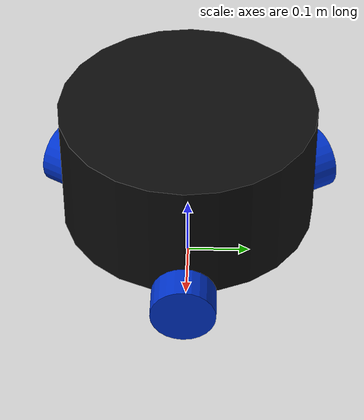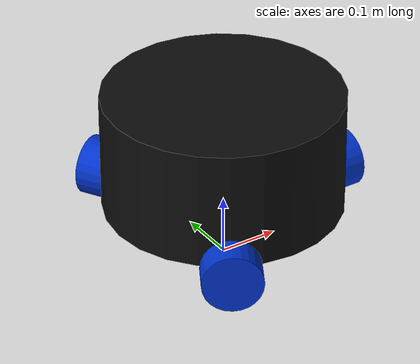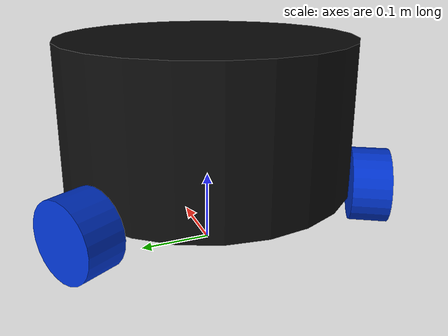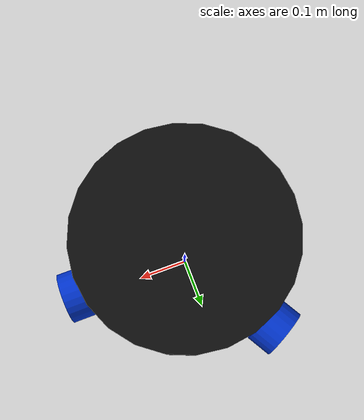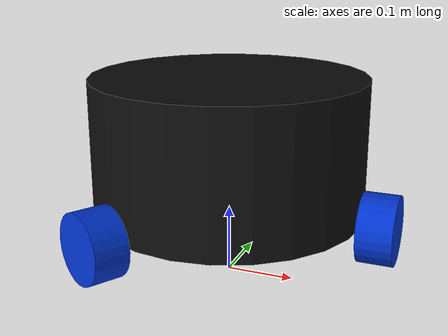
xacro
<?xml version="1.0"?>
<robot name="omnibot" xmlns:xacro="http://ros.org/wiki/xacro">
  <xacro:include filename="$(find omnibot_description)/urdf/common_properties.xacro"/>
  <xacro:include filename="$(find omnibot_description)/urdf/mech/omnibot_base.xacro"/>
  <xacro:include filename="$(find omnibot_description)/urdf/mech/omnibot_wheel.xacro"/>
  <xacro:include filename="$(find omnibot_description)/urdf/omnibot_sensors.xacro"/>
  <xacro:include filename="$(find omnibot_description)/urdf/omnibot_ros2_control.xacro"/>
  <xacro:include filename="$(find omnibot_description)/urdf/omnibot_gazebo.xacro"/>
</robot>

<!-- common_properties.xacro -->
<robot xmlns:xacro="http://ros.org/wiki/xacro">
  <material name="blue"><color rgba="0 0.2 0.8 1"/></material>
  <material name="black"><color rgba="0.05 0.05 0.05 1"/></material>
  <material name="grey"><color rgba="0.5 0.5 0.5 1"/></material>

  <xacro:macro name="cylinder_inertia" params="m r l o_xyz o_rpy">
    <inertial>
      <mass value="${m}"/>
      <origin xyz="${o_xyz}" rpy="${o_rpy}"/>
      <inertia ixx="${(m/12) * (3*r*r + l*l)}" ixy="0" ixz="0"
               iyy="${(m/12) * (3*r*r + l*l)}" iyz="0"
               izz="${(m/2) * r*r}"/>
    </inertial>
  </xacro:macro>
</robot>

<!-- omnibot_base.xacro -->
<robot xmlns:xacro="http://ros.org/wiki/xacro">
  <xacro:property name="base_radius" value="0.20"/>
  <xacro:property name="base_height" value="0.20"/>
  <xacro:property name="wheel_radius" value="0.05"/>
  <xacro:property name="wheel_length" value="0.05"/>

  <link name="base_footprint"/>
  <link name="base_link">
    <visual>
      <origin xyz="0 0 ${base_height / 2.0}" rpy="0 0 0"/>
      <geometry><cylinder radius="${base_radius}" length="${base_height}"/></geometry>
      <material name="black"/>
    </visual>
    <collision>
      <origin xyz="0 0 ${base_height / 2.0}" rpy="0 0 0"/>
      <geometry><cylinder radius="${base_radius}" length="${base_height}"/></geometry>
    </collision>
    <xacro:cylinder_inertia m="10.0" r="${base_radius}" l="${base_height}"
                            o_xyz="0 0 ${base_height / 2.0}" o_rpy="0 0 0"/>
  </link>

  <joint name="base_joint" type="fixed">
    <parent link="base_footprint"/>
    <child link="base_link"/>
    <origin xyz="0 0 ${base_height / 2.0}" rpy="0 0 0"/>
  </joint>
</robot>

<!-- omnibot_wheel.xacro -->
<robot xmlns:xacro="http://ros.org/wiki/xacro">
  <xacro:macro name="wheel_link" params="num">
    <link name="wheel_link_${num}">
      <visual>
        <geometry><cylinder radius="${wheel_radius}" length="${wheel_length}"/></geometry>
        <origin xyz="0 0 0" rpy="${pi / 2.0} 0 0"/>
        <material name="blue"/>
      </visual>
      <!-- A spherical contact surface approximates free-spinning omni rollers. -->
      <collision><geometry><sphere radius="${wheel_radius}"/></geometry></collision>
      <xacro:cylinder_inertia m="0.5" r="${wheel_radius}" l="${wheel_length}"
                              o_xyz="0 0 0" o_rpy="${pi / 2.0} 0 0"/>
    </link>
    <joint name="wheel_joint${num}" type="continuous">
      <parent link="base_link"/>
      <child link="wheel_link_${num}"/>
      <origin xyz="${(base_radius + wheel_length/2) * cos(num*pi*2/3)} ${(base_radius + wheel_length/2) * sin(num*pi*2/3)} 0"
              rpy="0 0 ${(num*pi*2/3) + pi/2}"/>
      <axis xyz="0 1 0"/>
    </joint>
  </xacro:macro>

  <xacro:wheel_link num="0"/>
  <xacro:wheel_link num="1"/>
  <xacro:wheel_link num="2"/>
</robot>

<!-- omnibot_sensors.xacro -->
<robot xmlns:xacro="http://ros.org/wiki/xacro">
  <link name="lidar_link">
    <visual>
      <geometry><cylinder radius="0.04" length="0.05"/></geometry>
      <material name="grey"/>
    </visual>
    <collision><geometry><cylinder radius="0.04" length="0.05"/></geometry></collision>
    <xacro:cylinder_inertia m="0.1" r="0.04" l="0.05" o_xyz="0 0 0" o_rpy="0 0 0"/>
  </link>
  <joint name="lidar_joint" type="fixed">
    <parent link="base_link"/>
    <child link="lidar_link"/>
    <origin xyz="0 0 0.13" rpy="0 0 0"/>
  </joint>

  <gazebo reference="lidar_link">
    <sensor name="lidar" type="gpu_lidar">
      <always_on>true</always_on>
      <visualize>true</visualize>
      <update_rate>10</update_rate>
      <topic>/scan</topic>
      <lidar>
        <scan><horizontal><samples>360</samples><resolution>1</resolution><min_angle>-${pi}</min_angle><max_angle>${pi}</max_angle></horizontal></scan>
        <range><min>0.12</min><max>3.5</max><resolution>0.01</resolution></range>
      </lidar>
    </sensor>
  </gazebo>

  <gazebo reference="base_link">
    <sensor name="camera_front" type="camera">
      <pose>0.20 0 0.10 0 0 0</pose><always_on>true</always_on><update_rate>10</update_rate>
      <camera><horizontal_fov>1.047</horizontal_fov><image><width>320</width><height>240</height><format>R8G8B8</format></image><clip><near>0.05</near><far>10</far></clip></camera>
      <topic>/camera/front</topic>
    </sensor>
    <sensor name="camera_left" type="camera">
      <pose>-0.10 0.173 0.10 0 0 2.094</pose><always_on>true</always_on><update_rate>10</update_rate>
      <camera><horizontal_fov>1.047</horizontal_fov><image><width>320</width><height>240</height><format>R8G8B8</format></image><clip><near>0.05</near><far>10</far></clip></camera>
      <topic>/camera/left</topic>
    </sensor>
    <sensor name="camera_right" type="camera">
      <pose>-0.10 -0.173 0.10 0 0 -2.094</pose><always_on>true</always_on><update_rate>10</update_rate>
      <camera><horizontal_fov>1.047</horizontal_fov><image><width>320</width><height>240</height><format>R8G8B8</format></image><clip><near>0.05</near><far>10</far></clip></camera>
      <topic>/camera/right</topic>
    </sensor>
  </gazebo>
</robot>
